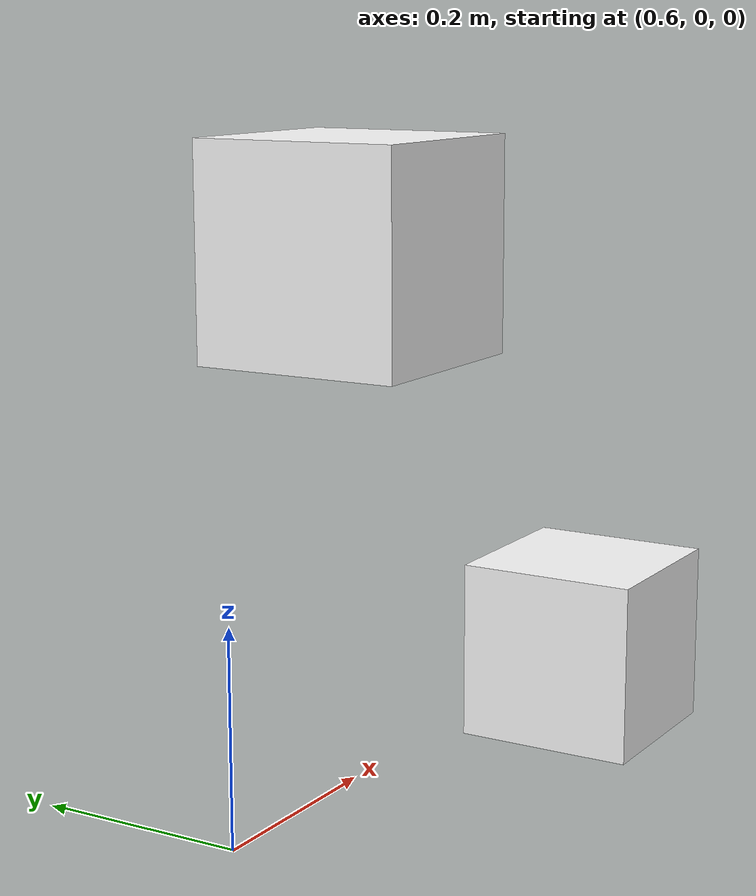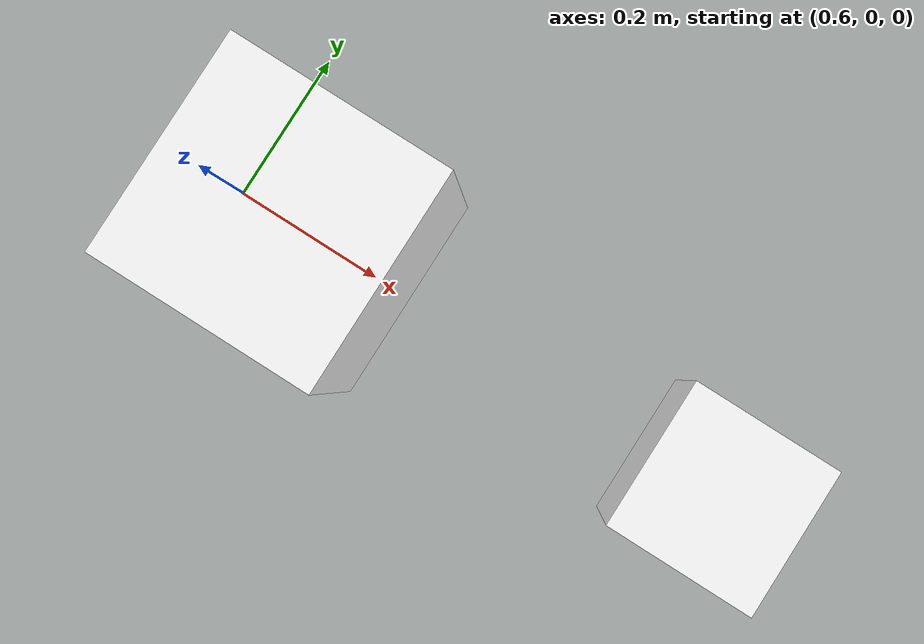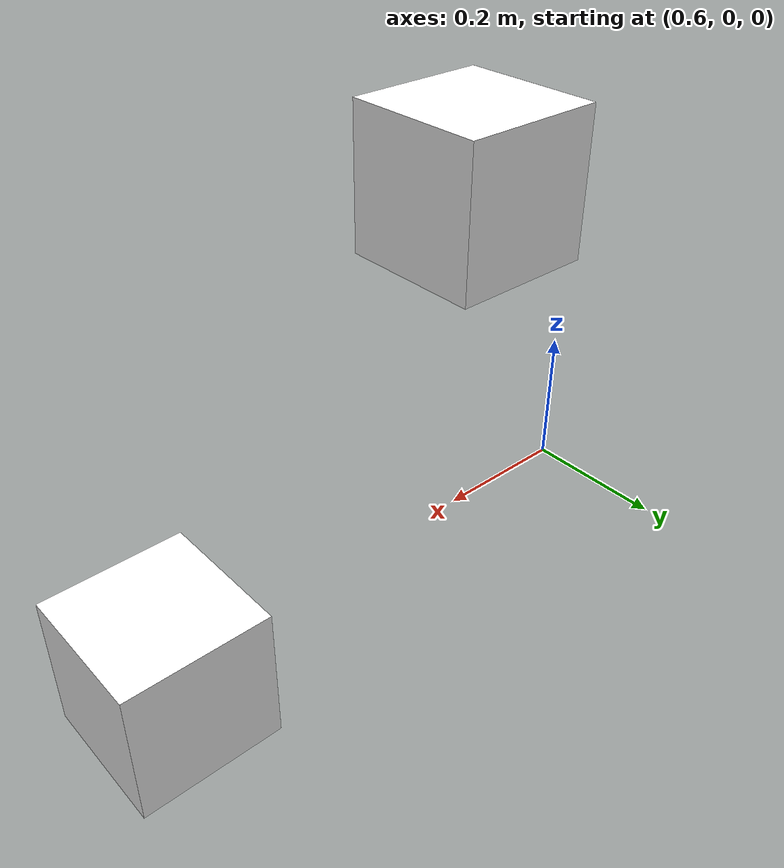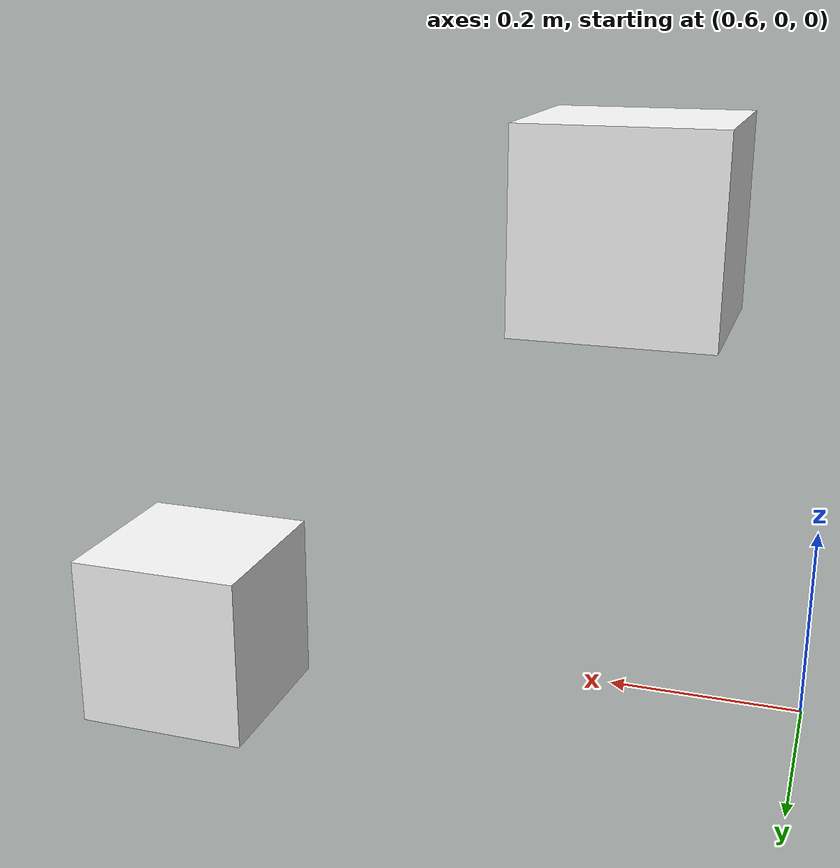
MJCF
<mujoco model="arm3d">
    <compiler inertiafromgeom="true" angle="radian" coordinate="local" />
    <option timestep="0.01" gravity="0 0 0" iterations="20" integrator="Euler" />

    <default>
        <joint armature='0.04' damping="1" limited="true"/>
        <geom friction=".8 .1 .1" density="300" margin="0.002" condim="1" contype="1" conaffinity="1"/>
    </default>

    <worldbody>
        <body name="palm" pos="0 0 0">
            <geom rgba="1 1 1 1" type="box" pos="1.3 0 0" size="0.1 0.1 0.1" density='0.00001' contype="0" conaffinity="0"/>
            <site name="object_pos" pos="1.3 0 0" size="0.01" />
            <joint name="palm_slidex" type="slide" pos="1.3 0 0" axis="1 0 0" range="-20.5236 20.3963" damping="1.0" />
            <joint name="palm_slidey" type="slide" pos="1.3 0 0" axis="0 0 1" range="-20.5236 20.3963" damping="1.0" />
        </body>

        <body name="goal" pos="0.8 0.0 0.5">
            <geom rgba="1 1 1 1" type="box" size="0.1 0.1 0.1" density='0.00001' contype="0" conaffinity="0"/>
            <site name="goal_pos" pos="0 0 0" size="0.01" />
        </body>
    </worldbody>

    <actuator>
        <motor joint="palm_slidex" ctrlrange="-1 1" ctrllimited="true"/>
        <motor joint="palm_slidey" ctrlrange="-1 1" ctrllimited="true"/>
    </actuator>
</mujoco>
